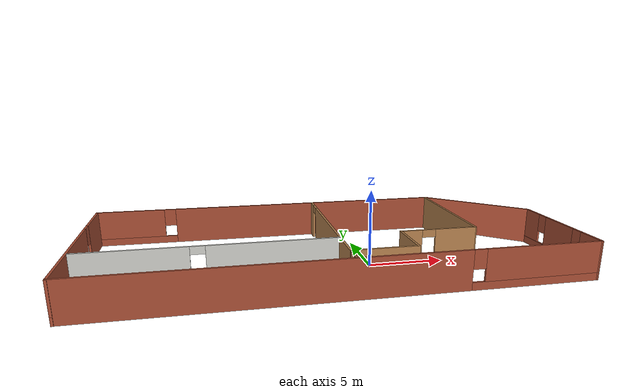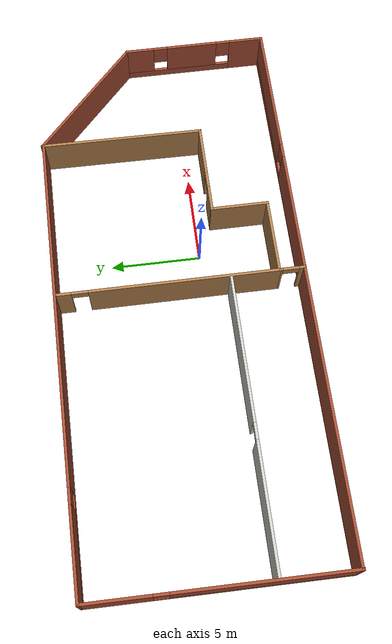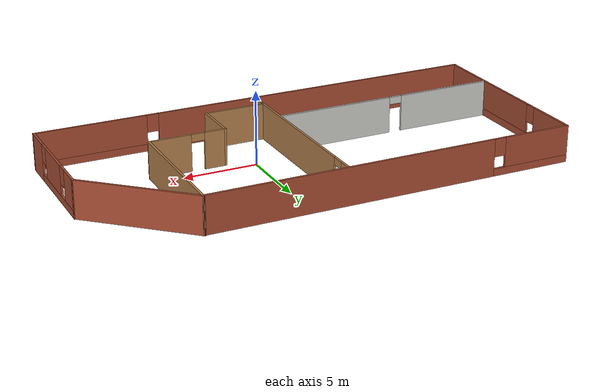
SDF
<?xml version='1.0'?>
<sdf version='1.6'>
  <model name='MyBuilding'>
    <pose frame=''>-2.58863 1.39497 0 0 -0 0</pose>
    <link name='Wall_10'>
      <pose frame=''>-0.015261 -6.7654 0 0 0 -0.001263</pose>
      <visual name='Wall_10_Visual_0'>
        <pose frame=''>-4.17694 0 1.25 0 -0 0</pose>
        <geometry>
          <box>
            <size>22.7639 0.15 2.5</size>
          </box>
        </geometry>
        <material>
          <script>
            <uri>file://media/materials/scripts/gazebo.material</uri>
            <name>Gazebo/Bricks</name>
          </script>
          <ambient>1 1 1 1</ambient>
        </material>
        <meta>
          <layer>0</layer>
        </meta>
      </visual>
      <collision name='Wall_10_Collision_0'>
        <geometry>
          <box>
            <size>22.7639 0.15 2.5</size>
          </box>
        </geometry>
        <pose frame=''>-4.17694 0 1.25 0 -0 0</pose>
      </collision>
      <visual name='Wall_10_Visual_1'>
        <pose frame=''>11.382 0 0.25 0 -0 0</pose>
        <geometry>
          <box>
            <size>8.35389 0.15 0.5</size>
          </box>
        </geometry>
        <material>
          <script>
            <uri>file://media/materials/scripts/gazebo.material</uri>
            <name>Gazebo/Bricks</name>
          </script>
          <ambient>1 1 1 1</ambient>
        </material>
        <meta>
          <layer>0</layer>
        </meta>
      </visual>
      <collision name='Wall_10_Collision_1'>
        <geometry>
          <box>
            <size>8.35389 0.15 0.5</size>
          </box>
        </geometry>
        <pose frame=''>11.382 0 0.25 0 -0 0</pose>
      </collision>
      <visual name='Wall_10_Visual_2'>
        <pose frame=''>11.782 0 1.5 0 -0 0</pose>
        <geometry>
          <box>
            <size>7.55389 0.15 2</size>
          </box>
        </geometry>
        <material>
          <script>
            <uri>file://media/materials/scripts/gazebo.material</uri>
            <name>Gazebo/Bricks</name>
          </script>
          <ambient>1 1 1 1</ambient>
        </material>
        <meta>
          <layer>0</layer>
        </meta>
      </visual>
      <collision name='Wall_10_Collision_2'>
        <geometry>
          <box>
            <size>7.55389 0.15 2</size>
          </box>
        </geometry>
        <pose frame=''>11.782 0 1.5 0 -0 0</pose>
      </collision>
      <visual name='Wall_10_Visual_3'>
        <pose frame=''>7.60502 0 1.9 0 -0 0</pose>
        <geometry>
          <box>
            <size>0.8 0.15 1.2</size>
          </box>
        </geometry>
        <material>
          <script>
            <uri>file://media/materials/scripts/gazebo.material</uri>
            <name>Gazebo/Bricks</name>
          </script>
          <ambient>1 1 1 1</ambient>
        </material>
        <meta>
          <layer>0</layer>
        </meta>
      </visual>
      <collision name='Wall_10_Collision_3'>
        <geometry>
          <box>
            <size>0.8 0.15 1.2</size>
          </box>
        </geometry>
        <pose frame=''>7.60502 0 1.9 0 -0 0</pose>
      </collision>
    </link>
    <link name='Wall_11'>
      <pose frame=''>15.4686 -2.73496 0 0 -0 1.5708</pose>
      <visual name='Wall_11_Visual_0'>
        <pose frame=''>-3.12754 0 1.25 0 -0 0</pose>
        <geometry>
          <box>
            <size>1.99493 0.15 2.5</size>
          </box>
        </geometry>
        <material>
          <script>
            <uri>file://media/materials/scripts/gazebo.material</uri>
            <name>Gazebo/Bricks</name>
          </script>
          <ambient>1 1 1 1</ambient>
        </material>
        <meta>
          <layer>0</layer>
        </meta>
      </visual>
      <collision name='Wall_11_Collision_0'>
        <geometry>
          <box>
            <size>1.99493 0.15 2.5</size>
          </box>
        </geometry>
        <pose frame=''>-3.12754 0 1.25 0 -0 0</pose>
      </collision>
      <visual name='Wall_11_Visual_1'>
        <pose frame=''>0.997463 0 0.25 0 -0 0</pose>
        <geometry>
          <box>
            <size>6.25507 0.15 0.5</size>
          </box>
        </geometry>
        <material>
          <script>
            <uri>file://media/materials/scripts/gazebo.material</uri>
            <name>Gazebo/Bricks</name>
          </script>
          <ambient>1 1 1 1</ambient>
        </material>
        <meta>
          <layer>0</layer>
        </meta>
      </visual>
      <collision name='Wall_11_Collision_1'>
        <geometry>
          <box>
            <size>6.25507 0.15 0.5</size>
          </box>
        </geometry>
        <pose frame=''>0.997463 0 0.25 0 -0 0</pose>
      </collision>
      <visual name='Wall_11_Visual_2'>
        <pose frame=''>0.15581 0 1.5 0 -0 0</pose>
        <geometry>
          <box>
            <size>2.97177 0.15 2</size>
          </box>
        </geometry>
        <material>
          <script>
            <uri>file://media/materials/scripts/gazebo.material</uri>
            <name>Gazebo/Bricks</name>
          </script>
          <ambient>1 1 1 1</ambient>
        </material>
        <meta>
          <layer>0</layer>
        </meta>
      </visual>
      <collision name='Wall_11_Collision_2'>
        <geometry>
          <box>
            <size>2.97177 0.15 2</size>
          </box>
        </geometry>
        <pose frame=''>0.15581 0 1.5 0 -0 0</pose>
      </collision>
      <visual name='Wall_11_Visual_3'>
        <pose frame=''>3.28335 0 1.5 0 -0 0</pose>
        <geometry>
          <box>
            <size>1.68331 0.15 2</size>
          </box>
        </geometry>
        <material>
          <script>
            <uri>file://media/materials/scripts/gazebo.material</uri>
            <name>Gazebo/Bricks</name>
          </script>
          <ambient>1 1 1 1</ambient>
        </material>
        <meta>
          <layer>0</layer>
        </meta>
      </visual>
      <collision name='Wall_11_Collision_3'>
        <geometry>
          <box>
            <size>1.68331 0.15 2</size>
          </box>
        </geometry>
        <pose frame=''>3.28335 0 1.5 0 -0 0</pose>
      </collision>
      <visual name='Wall_11_Visual_4'>
        <pose frame=''>-1.73008 0 1.9 0 -0 0</pose>
        <geometry>
          <box>
            <size>0.8 0.15 1.2</size>
          </box>
        </geometry>
        <material>
          <script>
            <uri>file://media/materials/scripts/gazebo.material</uri>
            <name>Gazebo/Bricks</name>
          </script>
          <ambient>1 1 1 1</ambient>
        </material>
        <meta>
          <layer>0</layer>
        </meta>
      </visual>
      <collision name='Wall_11_Collision_4'>
        <geometry>
          <box>
            <size>0.8 0.15 1.2</size>
          </box>
        </geometry>
        <pose frame=''>-1.73008 0 1.9 0 -0 0</pose>
      </collision>
      <visual name='Wall_11_Visual_5'>
        <pose frame=''>2.04169 0 1.9 0 -0 0</pose>
        <geometry>
          <box>
            <size>0.8 0.15 1.2</size>
          </box>
        </geometry>
        <material>
          <script>
            <uri>file://media/materials/scripts/gazebo.material</uri>
            <name>Gazebo/Bricks</name>
          </script>
          <ambient>1 1 1 1</ambient>
        </material>
        <meta>
          <layer>0</layer>
        </meta>
      </visual>
      <collision name='Wall_11_Collision_5'>
        <geometry>
          <box>
            <size>0.8 0.15 1.2</size>
          </box>
        </geometry>
        <pose frame=''>2.04169 0 1.9 0 -0 0</pose>
      </collision>
    </link>
    <link name='Wall_12'>
      <collision name='Wall_12_Collision'>
        <geometry>
          <box>
            <size>8.18325 0.15 2.5</size>
          </box>
        </geometry>
        <pose frame=''>0 0 1.25 0 -0 0</pose>
      </collision>
      <visual name='Wall_12_Visual'>
        <pose frame=''>0 0 1.25 0 -0 0</pose>
        <geometry>
          <box>
            <size>8.18325 0.15 2.5</size>
          </box>
        </geometry>
        <material>
          <script>
            <uri>file://media/materials/scripts/gazebo.material</uri>
            <name>Gazebo/Bricks</name>
          </script>
          <ambient>1 1 1 1</ambient>
        </material>
        <meta>
          <layer>0</layer>
        </meta>
      </visual>
      <pose frame=''>12.5089 4.03037 0 0 -0 2.39924</pose>
    </link>
    <link name='Wall_14'>
      <pose frame=''>0.268632 -6.05997 0 0 -0 1.5708</pose>
      <visual name='Wall_14_Visual_0'>
        <pose frame=''>-0.578184 0 1.25 0 -0 0</pose>
        <geometry>
          <box>
            <size>0.343633 0.15 2.5</size>
          </box>
        </geometry>
        <material>
          <script>
            <uri>file://media/materials/scripts/gazebo.material</uri>
            <name>Gazebo/Wood</name>
          </script>
          <ambient>1 1 1 1</ambient>
        </material>
        <meta>
          <layer>0</layer>
        </meta>
      </visual>
      <collision name='Wall_14_Collision_0'>
        <geometry>
          <box>
            <size>0.343633 0.15 2.5</size>
          </box>
        </geometry>
        <pose frame=''>-0.578184 0 1.25 0 -0 0</pose>
      </collision>
      <visual name='Wall_14_Visual_1'>
        <pose frame=''>0.621816 0 1.25 0 -0 0</pose>
        <geometry>
          <box>
            <size>0.256367 0.15 2.5</size>
          </box>
        </geometry>
        <material>
          <script>
            <uri>file://media/materials/scripts/gazebo.material</uri>
            <name>Gazebo/Wood</name>
          </script>
          <ambient>1 1 1 1</ambient>
        </material>
        <meta>
          <layer>0</layer>
        </meta>
      </visual>
      <collision name='Wall_14_Collision_1'>
        <geometry>
          <box>
            <size>0.256367 0.15 2.5</size>
          </box>
        </geometry>
        <pose frame=''>0.621816 0 1.25 0 -0 0</pose>
      </collision>
      <visual name='Wall_14_Visual_2'>
        <pose frame=''>0.043633 0 2.25 0 -0 0</pose>
        <geometry>
          <box>
            <size>0.9 0.15 0.5</size>
          </box>
        </geometry>
        <material>
          <script>
            <uri>file://media/materials/scripts/gazebo.material</uri>
            <name>Gazebo/Wood</name>
          </script>
          <ambient>1 1 1 1</ambient>
        </material>
        <meta>
          <layer>0</layer>
        </meta>
      </visual>
      <collision name='Wall_14_Collision_2'>
        <geometry>
          <box>
            <size>0.9 0.15 0.5</size>
          </box>
        </geometry>
        <pose frame=''>0.043633 0 2.25 0 -0 0</pose>
      </collision>
    </link>
    <link name='Wall_16'>
      <pose frame=''>0.268632 0.665035 0 0 0 -1.5708</pose>
      <visual name='Wall_16_Visual_0'>
        <pose frame=''>-5.65065 0 1.25 0 -0 0</pose>
        <geometry>
          <box>
            <size>0.948707 0.15 2.5</size>
          </box>
        </geometry>
        <material>
          <script>
            <uri>file://media/materials/scripts/gazebo.material</uri>
            <name>Gazebo/Wood</name>
          </script>
          <ambient>1 1 1 1</ambient>
        </material>
        <meta>
          <layer>0</layer>
        </meta>
      </visual>
      <collision name='Wall_16_Collision_0'>
        <geometry>
          <box>
            <size>0.948707 0.15 2.5</size>
          </box>
        </geometry>
        <pose frame=''>-5.65065 0 1.25 0 -0 0</pose>
      </collision>
      <visual name='Wall_16_Visual_1'>
        <pose frame=''>0.924354 0 1.25 0 -0 0</pose>
        <geometry>
          <box>
            <size>10.4013 0.15 2.5</size>
          </box>
        </geometry>
        <material>
          <script>
            <uri>file://media/materials/scripts/gazebo.material</uri>
            <name>Gazebo/Wood</name>
          </script>
          <ambient>1 1 1 1</ambient>
        </material>
        <meta>
          <layer>0</layer>
        </meta>
      </visual>
      <collision name='Wall_16_Collision_1'>
        <geometry>
          <box>
            <size>10.4013 0.15 2.5</size>
          </box>
        </geometry>
        <pose frame=''>0.924354 0 1.25 0 -0 0</pose>
      </collision>
      <visual name='Wall_16_Visual_2'>
        <pose frame=''>-4.72629 0 2.25 0 -0 0</pose>
        <geometry>
          <box>
            <size>0.9 0.15 0.5</size>
          </box>
        </geometry>
        <material>
          <script>
            <uri>file://media/materials/scripts/gazebo.material</uri>
            <name>Gazebo/Wood</name>
          </script>
          <ambient>1 1 1 1</ambient>
        </material>
        <meta>
          <layer>0</layer>
        </meta>
      </visual>
      <collision name='Wall_16_Collision_2'>
        <geometry>
          <box>
            <size>0.9 0.15 0.5</size>
          </box>
        </geometry>
        <pose frame=''>-4.72629 0 2.25 0 -0 0</pose>
      </collision>
    </link>
    <link name='Wall_18'>
      <pose frame=''>-7.54126 -2.76166 0 0 -0 0</pose>
      <visual name='Wall_18_Visual_0'>
        <pose frame=''>-4.5396 0 1.25 0 -0 0</pose>
        <geometry>
          <box>
            <size>6.6708 0.15 2.5</size>
          </box>
        </geometry>
        <material>
          <script>
            <uri>file://media/materials/scripts/gazebo.material</uri>
            <name>Gazebo/CeilingTiled</name>
          </script>
          <ambient>1 1 1 1</ambient>
        </material>
        <meta>
          <layer>0</layer>
        </meta>
      </visual>
      <collision name='Wall_18_Collision_0'>
        <geometry>
          <box>
            <size>6.6708 0.15 2.5</size>
          </box>
        </geometry>
        <pose frame=''>-4.5396 0 1.25 0 -0 0</pose>
      </collision>
      <visual name='Wall_18_Visual_1'>
        <pose frame=''>3.7854 0 1.25 0 -0 0</pose>
        <geometry>
          <box>
            <size>8.1792 0.15 2.5</size>
          </box>
        </geometry>
        <material>
          <script>
            <uri>file://media/materials/scripts/gazebo.material</uri>
            <name>Gazebo/CeilingTiled</name>
          </script>
          <ambient>1 1 1 1</ambient>
        </material>
        <meta>
          <layer>0</layer>
        </meta>
      </visual>
      <collision name='Wall_18_Collision_1'>
        <geometry>
          <box>
            <size>8.1792 0.15 2.5</size>
          </box>
        </geometry>
        <pose frame=''>3.7854 0 1.25 0 -0 0</pose>
      </collision>
      <visual name='Wall_18_Visual_2'>
        <pose frame=''>-0.754201 0 2.25 0 -0 0</pose>
        <geometry>
          <box>
            <size>0.9 0.15 0.5</size>
          </box>
        </geometry>
        <material>
          <script>
            <uri>file://media/materials/scripts/gazebo.material</uri>
            <name>Gazebo/CeilingTiled</name>
          </script>
          <ambient>1 1 1 1</ambient>
        </material>
        <meta>
          <layer>0</layer>
        </meta>
      </visual>
      <collision name='Wall_18_Collision_2'>
        <geometry>
          <box>
            <size>0.9 0.15 0.5</size>
          </box>
        </geometry>
        <pose frame=''>-0.754201 0 2.25 0 -0 0</pose>
      </collision>
    </link>
    <link name='Wall_2'>
      <collision name='Wall_2_Collision'>
        <geometry>
          <box>
            <size>4.25 0.15 2.5</size>
          </box>
        </geometry>
        <pose frame=''>0 0 1.25 0 -0 0</pose>
      </collision>
      <visual name='Wall_2_Visual'>
        <pose frame=''>0 0 1.25 0 -0 0</pose>
        <geometry>
          <box>
            <size>4.25 0.15 2.5</size>
          </box>
        </geometry>
        <material>
          <script>
            <uri>file://media/materials/scripts/gazebo.material</uri>
            <name>Gazebo/Wood</name>
          </script>
          <ambient>1 1 1 1</ambient>
        </material>
        <meta>
          <layer>0</layer>
        </meta>
      </visual>
      <pose frame=''>2.31863 -5.38497 0 0 -0 0</pose>
    </link>
    <link name='Wall_3'>
      <collision name='Wall_3_Collision'>
        <geometry>
          <box>
            <size>3.25 0.15 2.5</size>
          </box>
        </geometry>
        <pose frame=''>0 0 1.25 0 -0 0</pose>
      </collision>
      <visual name='Wall_3_Visual'>
        <pose frame=''>0 0 1.25 0 -0 0</pose>
        <geometry>
          <box>
            <size>3.25 0.15 2.5</size>
          </box>
        </geometry>
        <material>
          <script>
            <uri>file://media/materials/scripts/gazebo.material</uri>
            <name>Gazebo/Wood</name>
          </script>
          <ambient>1 1 1 1</ambient>
        </material>
        <meta>
          <layer>0</layer>
        </meta>
      </visual>
      <pose frame=''>4.36863 -3.83496 0 0 -0 1.5708</pose>
    </link>
    <link name='Wall_4'>
      <pose frame=''>6.91863 -2.28497 0 0 -0 0</pose>
      <visual name='Wall_4_Visual_0'>
        <pose frame=''>-1.87852 0 1.25 0 -0 0</pose>
        <geometry>
          <box>
            <size>1.49297 0.15 2.5</size>
          </box>
        </geometry>
        <material>
          <script>
            <uri>file://media/materials/scripts/gazebo.material</uri>
            <name>Gazebo/Wood</name>
          </script>
          <ambient>1 1 1 1</ambient>
        </material>
        <meta>
          <layer>0</layer>
        </meta>
      </visual>
      <collision name='Wall_4_Collision_0'>
        <geometry>
          <box>
            <size>1.49297 0.15 2.5</size>
          </box>
        </geometry>
        <pose frame=''>-1.87852 0 1.25 0 -0 0</pose>
      </collision>
      <visual name='Wall_4_Visual_1'>
        <pose frame=''>1.19648 0 1.25 0 -0 0</pose>
        <geometry>
          <box>
            <size>2.85703 0.15 2.5</size>
          </box>
        </geometry>
        <material>
          <script>
            <uri>file://media/materials/scripts/gazebo.material</uri>
            <name>Gazebo/Wood</name>
          </script>
          <ambient>1 1 1 1</ambient>
        </material>
        <meta>
          <layer>0</layer>
        </meta>
      </visual>
      <collision name='Wall_4_Collision_1'>
        <geometry>
          <box>
            <size>2.85703 0.15 2.5</size>
          </box>
        </geometry>
        <pose frame=''>1.19648 0 1.25 0 -0 0</pose>
      </collision>
      <visual name='Wall_4_Visual_2'>
        <pose frame=''>-0.682031 0 2.25 0 -0 0</pose>
        <geometry>
          <box>
            <size>0.9 0.15 0.5</size>
          </box>
        </geometry>
        <material>
          <script>
            <uri>file://media/materials/scripts/gazebo.material</uri>
            <name>Gazebo/Wood</name>
          </script>
          <ambient>1 1 1 1</ambient>
        </material>
        <meta>
          <layer>0</layer>
        </meta>
      </visual>
      <collision name='Wall_4_Collision_2'>
        <geometry>
          <box>
            <size>0.9 0.15 0.5</size>
          </box>
        </geometry>
        <pose frame=''>-0.682031 0 2.25 0 -0 0</pose>
      </collision>
    </link>
    <link name='Wall_6'>
      <collision name='Wall_6_Collision'>
        <geometry>
          <box>
            <size>9.18102 0.15 2.5</size>
          </box>
        </geometry>
        <pose frame=''>0 0 1.25 0 -0 0</pose>
      </collision>
      <visual name='Wall_6_Visual'>
        <pose frame=''>0 0 1.25 0 -0 0</pose>
        <geometry>
          <box>
            <size>9.18102 0.15 2.5</size>
          </box>
        </geometry>
        <material>
          <script>
            <uri>file://media/materials/scripts/gazebo.material</uri>
            <name>Gazebo/Wood</name>
          </script>
          <ambient>1 1 1 1</ambient>
        </material>
        <meta>
          <layer>0</layer>
        </meta>
      </visual>
      <pose frame=''>9.50886 2.23037 0 0 -0 1.56189</pose>
    </link>
    <link name='Wall_7'>
      <pose frame=''>-2.93481 6.74515 0 0 -0 3.13842</pose>
      <visual name='Wall_7_Visual_0'>
        <pose frame=''>-2.76447 0 1.25 0 -0 0</pose>
        <geometry>
          <box>
            <size>19.589 0.15 2.5</size>
          </box>
        </geometry>
        <material>
          <script>
            <uri>file://media/materials/scripts/gazebo.material</uri>
            <name>Gazebo/Bricks</name>
          </script>
          <ambient>1 1 1 1</ambient>
        </material>
        <meta>
          <layer>0</layer>
        </meta>
      </visual>
      <collision name='Wall_7_Collision_0'>
        <geometry>
          <box>
            <size>19.589 0.15 2.5</size>
          </box>
        </geometry>
        <pose frame=''>-2.76447 0 1.25 0 -0 0</pose>
      </collision>
      <visual name='Wall_7_Visual_1'>
        <pose frame=''>9.79449 0 0.25 0 -0 0</pose>
        <geometry>
          <box>
            <size>5.52894 0.15 0.5</size>
          </box>
        </geometry>
        <material>
          <script>
            <uri>file://media/materials/scripts/gazebo.material</uri>
            <name>Gazebo/Bricks</name>
          </script>
          <ambient>1 1 1 1</ambient>
        </material>
        <meta>
          <layer>0</layer>
        </meta>
      </visual>
      <collision name='Wall_7_Collision_1'>
        <geometry>
          <box>
            <size>5.52894 0.15 0.5</size>
          </box>
        </geometry>
        <pose frame=''>9.79449 0 0.25 0 -0 0</pose>
      </collision>
      <visual name='Wall_7_Visual_2'>
        <pose frame=''>10.1945 0 1.5 0 -0 0</pose>
        <geometry>
          <box>
            <size>4.72894 0.15 2</size>
          </box>
        </geometry>
        <material>
          <script>
            <uri>file://media/materials/scripts/gazebo.material</uri>
            <name>Gazebo/Bricks</name>
          </script>
          <ambient>1 1 1 1</ambient>
        </material>
        <meta>
          <layer>0</layer>
        </meta>
      </visual>
      <collision name='Wall_7_Collision_2'>
        <geometry>
          <box>
            <size>4.72894 0.15 2</size>
          </box>
        </geometry>
        <pose frame=''>10.1945 0 1.5 0 -0 0</pose>
      </collision>
      <visual name='Wall_7_Visual_3'>
        <pose frame=''>7.43002 0 1.9 0 -0 0</pose>
        <geometry>
          <box>
            <size>0.8 0.15 1.2</size>
          </box>
        </geometry>
        <material>
          <script>
            <uri>file://media/materials/scripts/gazebo.material</uri>
            <name>Gazebo/Bricks</name>
          </script>
          <ambient>1 1 1 1</ambient>
        </material>
        <meta>
          <layer>0</layer>
        </meta>
      </visual>
      <collision name='Wall_7_Collision_3'>
        <geometry>
          <box>
            <size>0.8 0.15 1.2</size>
          </box>
        </geometry>
        <pose frame=''>7.43002 0 1.9 0 -0 0</pose>
      </collision>
    </link>
    <link name='Wall_9'>
      <pose frame=''>-15.4589 -0.00696 0 0 0 -1.57674</pose>
      <visual name='Wall_9_Visual_0'>
        <pose frame=''>-5.04607 0 1.25 0 -0 0</pose>
        <geometry>
          <box>
            <size>3.58877 0.15 2.5</size>
          </box>
        </geometry>
        <material>
          <script>
            <uri>file://media/materials/scripts/gazebo.material</uri>
            <name>Gazebo/Bricks</name>
          </script>
          <ambient>1 1 1 1</ambient>
        </material>
        <meta>
          <layer>0</layer>
        </meta>
      </visual>
      <collision name='Wall_9_Collision_0'>
        <geometry>
          <box>
            <size>3.58877 0.15 2.5</size>
          </box>
        </geometry>
        <pose frame=''>-5.04607 0 1.25 0 -0 0</pose>
      </collision>
      <visual name='Wall_9_Visual_1'>
        <pose frame=''>1.79438 0 0.25 0 -0 0</pose>
        <geometry>
          <box>
            <size>10.0921 0.15 0.5</size>
          </box>
        </geometry>
        <material>
          <script>
            <uri>file://media/materials/scripts/gazebo.material</uri>
            <name>Gazebo/Bricks</name>
          </script>
          <ambient>1 1 1 1</ambient>
        </material>
        <meta>
          <layer>0</layer>
        </meta>
      </visual>
      <collision name='Wall_9_Collision_1'>
        <geometry>
          <box>
            <size>10.0921 0.15 0.5</size>
          </box>
        </geometry>
        <pose frame=''>1.79438 0 0.25 0 -0 0</pose>
      </collision>
      <visual name='Wall_9_Visual_2'>
        <pose frame=''>2.19438 0 1.5 0 -0 0</pose>
        <geometry>
          <box>
            <size>9.29214 0.15 2</size>
          </box>
        </geometry>
        <material>
          <script>
            <uri>file://media/materials/scripts/gazebo.material</uri>
            <name>Gazebo/Bricks</name>
          </script>
          <ambient>1 1 1 1</ambient>
        </material>
        <meta>
          <layer>0</layer>
        </meta>
      </visual>
      <collision name='Wall_9_Collision_2'>
        <geometry>
          <box>
            <size>9.29214 0.15 2</size>
          </box>
        </geometry>
        <pose frame=''>2.19438 0 1.5 0 -0 0</pose>
      </collision>
      <visual name='Wall_9_Visual_3'>
        <pose frame=''>-2.85168 0 1.9 0 -0 0</pose>
        <geometry>
          <box>
            <size>0.8 0.15 1.2</size>
          </box>
        </geometry>
        <material>
          <script>
            <uri>file://media/materials/scripts/gazebo.material</uri>
            <name>Gazebo/Bricks</name>
          </script>
          <ambient>1 1 1 1</ambient>
        </material>
        <meta>
          <layer>0</layer>
        </meta>
      </visual>
      <collision name='Wall_9_Collision_3'>
        <geometry>
          <box>
            <size>0.8 0.15 1.2</size>
          </box>
        </geometry>
        <pose frame=''>-2.85168 0 1.9 0 -0 0</pose>
      </collision>
    </link>
    <static>1</static>
  </model>
</sdf>
